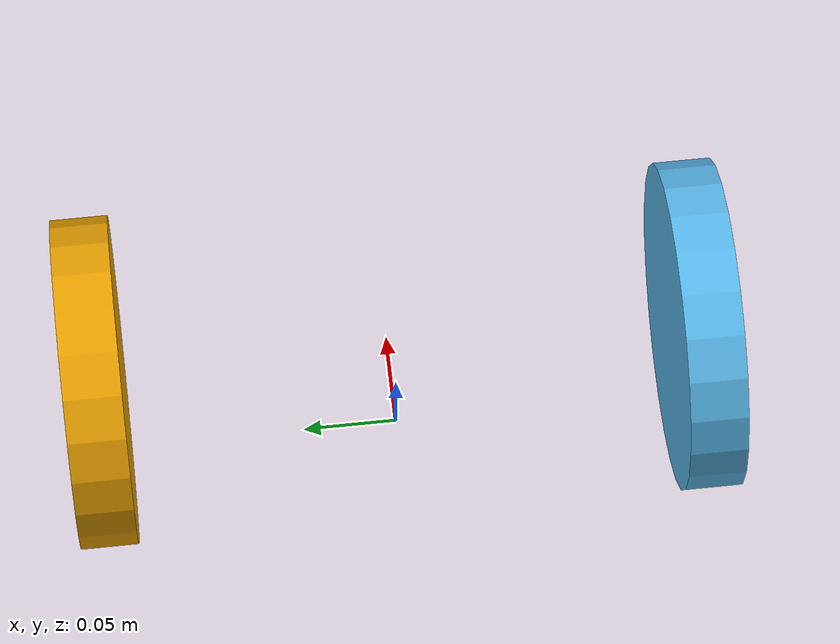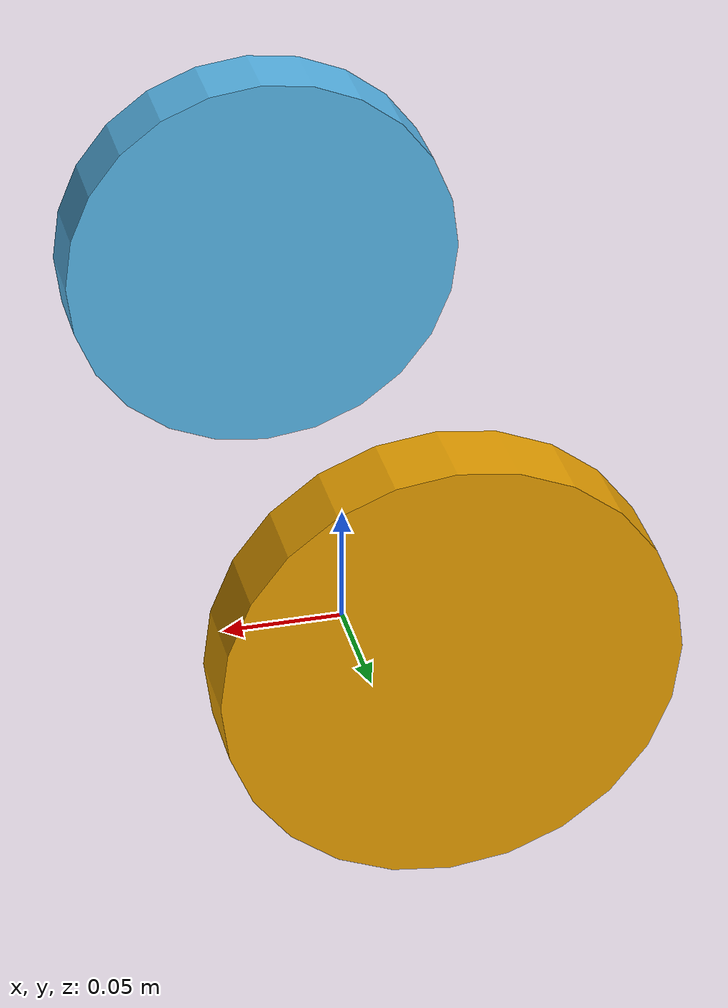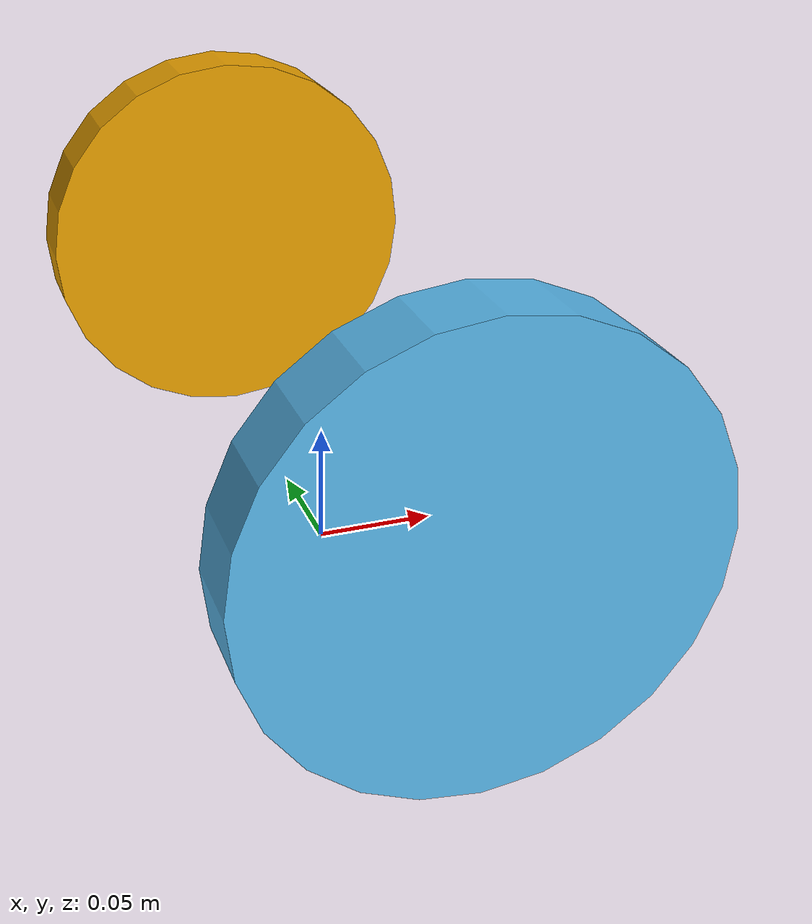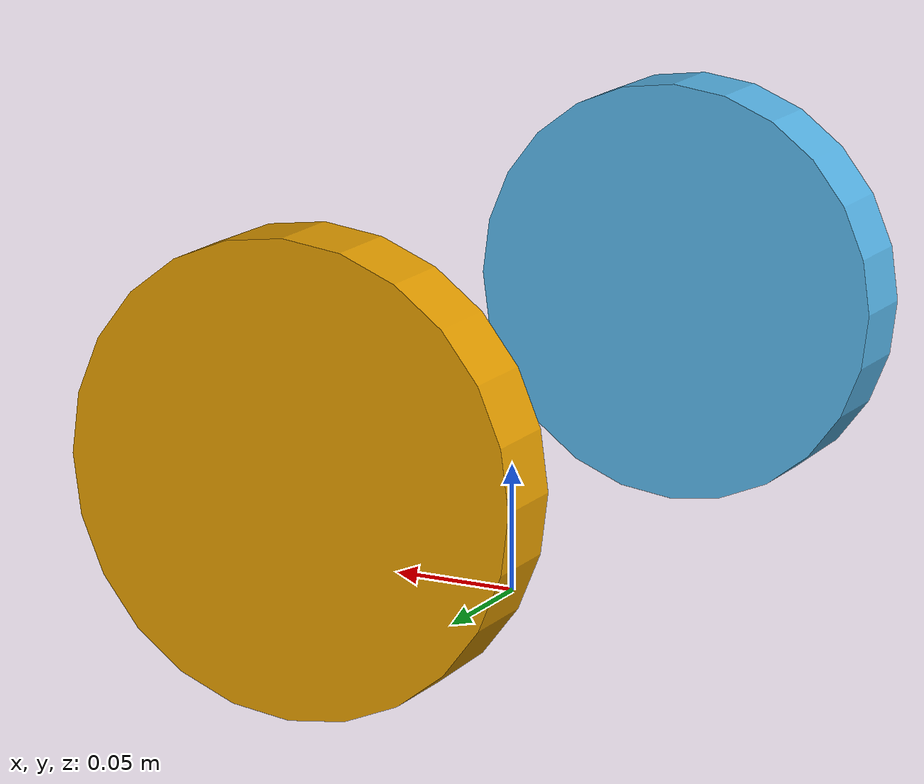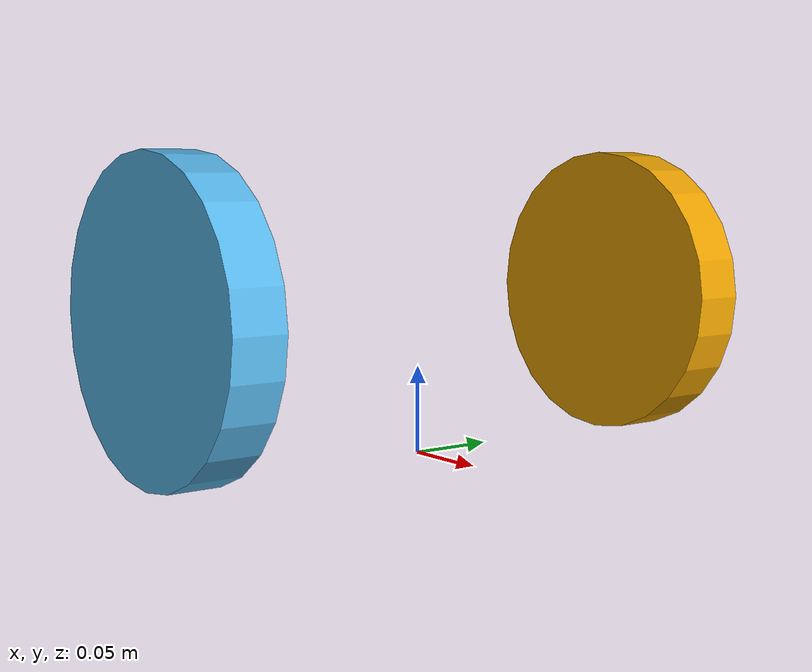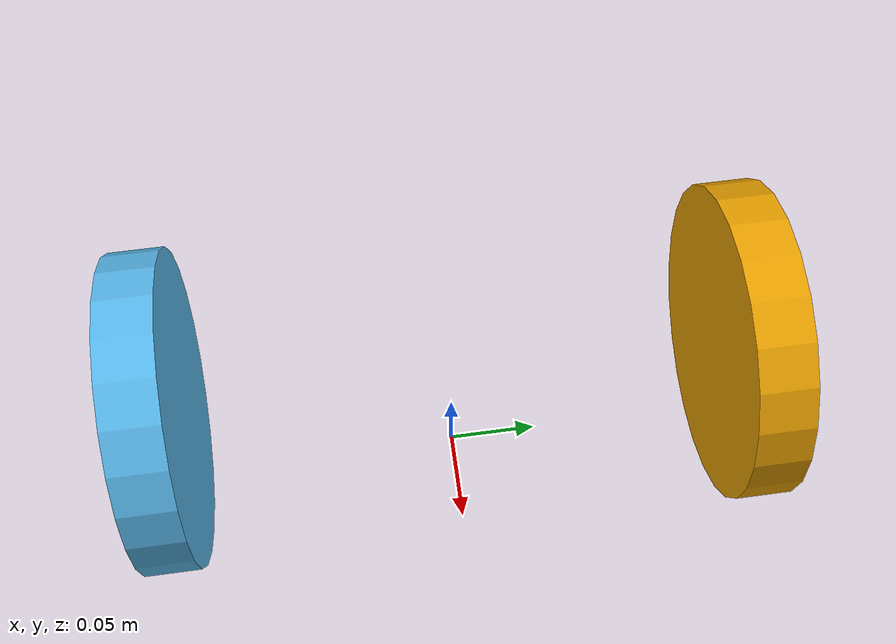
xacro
<?xml version="1.0" ?>
<robot name="SQUARE_SIRBOT"
       xmlns:xacro="http://ros.org/wiki/xacro"
       hw_version="v.1.3"
       motor_ch="2ch"
       camera1="d435"
       camera2="d435"
       lidar1="s2"
       footprint="[[0.255, 0.1365], [0.241, 0.17806], [0.185, 0.2065], [-0.185, 0.2065], [-0.24133, 0.17806], [-0.255, 0.1365], [-0.255, -0.1365], [-0.24133, -0.17806], [-0.185, -0.2065], [0.185, -0.2065], [0.24133, -0.17806], [0.255, -0.1365]]"
       robot_radius="0.32">

  <link name="robot_namespace/base_footprint">
    <origin xyz="0 0 0" rpy="0 0 0 " />
  </link>
  <joint name="robot_namespace/base_joint" type="fixed">
      <origin xyz="0 0 0.086500" rpy="0 0 0" />
    <parent link="robot_namespace/base_footprint"/>
    <child link="robot_namespace/base_link" />
  </joint>
  <link name="robot_namespace/base_link"/>
  <joint name="robot_namespace/imu_joint" type="fixed">
    <origin xyz=" 0.000000 0.000000 0.171100" rpy=" 0.000000 0.000000 0.000000"/>
    <parent link="robot_namespace/base_link"/>
    <child link="robot_namespace/imu_link" />
  </joint>
  <link name="robot_namespace/imu_link"/>
  <joint name="robot_namespace/scan_joint" type="fixed">
    <origin xyz=" 0.144900 0.000000 0.131600" rpy=" 0.000000 0.000000 0.000"/>
    <parent link="robot_namespace/base_link"/>
    <child link="robot_namespace/scan_link" />
  </joint>
  <link name="robot_namespace/scan_link"/>
  <joint name="robot_namespace/camera1_bottom_screw_joint" type="fixed">
    <origin xyz=" 0.179500 0.000000 0.54800" rpy=" 0.000000 0.0000 0.000000"/>
    <parent link="robot_namespace/base_link"/>
    <child link="robot_namespace/camera1_bottom_screw_link" />
  </joint>
  <link name="robot_namespace/camera1_bottom_screw_link"/>
  <joint name="robot_namespace/camera1_link_joint" type="fixed">
    <origin xyz=" 0.010600 0.017500 0.012500" rpy=" 0.000000 0.000000 0.000000"/>
    <parent link="robot_namespace/camera1_bottom_screw_link"/>
    <child link="robot_namespace/camera1_link" />
  </joint>
  <link name="robot_namespace/camera1_link"/>
  <joint name="robot_namespace/camera1_color_joint" type="fixed">
    <origin xyz=" 0.000000 0.015000 0.000000" rpy=" 0.000000 0.000000 0.000000"/>
    <parent link="robot_namespace/camera1_link"/>
    <child link="robot_namespace/camera1_color_frame" />
  </joint>
  <link name="robot_namespace/camera1_color_frame"/>
  <joint name="robot_namespace/camera1_color_optical_joint" type="fixed">
    <origin xyz=" 0.000000 0.000000 0.000000" rpy=" -1.570796 0.000000 -1.570796"/>
    <parent link="robot_namespace/camera1_color_frame"/>
    <child link="robot_namespace/camera1_color_optical_frame" />
  </joint>
  <link name="robot_namespace/camera1_color_optical_frame"/>
  <joint name="robot_namespace/camera1_depth_joint" type="fixed">
    <origin xyz=" 0.000000 0.000000 0.000000" rpy=" 0.000000 0.000000 0.000000"/>
    <parent link="robot_namespace/camera1_link"/>
    <child link="robot_namespace/camera1_depth_frame" />
  </joint>
  <link name="robot_namespace/camera1_depth_frame"/>
  <joint name="robot_namespace/camera1_depth_optical_joint" type="fixed">
    <origin xyz=" 0.000000 0.000000 0.000000" rpy=" 0.0 0.000000 0.0"/>
    <parent link="robot_namespace/camera1_depth_frame"/>
    <child link="robot_namespace/camera1_depth_optical_frame" />
  </joint>
  <link name="robot_namespace/camera1_depth_optical_frame"/>
  <joint name="robot_namespace/camera1_infra1_joint" type="fixed">
    <origin xyz=" 0.000000 0.000000 0.000000" rpy=" 0.000000 0.000000 0.000000"/>
    <parent link="robot_namespace/camera1_link"/>
    <child link="robot_namespace/camera1_infra1_frame" />
  </joint>
  <link name="robot_namespace/camera1_infra1_frame"/>
  <joint name="robot_namespace/camera1_infra1_optical_joint" type="fixed">
    <origin xyz=" 0.000000 0.000000 0.000000" rpy=" -1.570796 0.000000 -1.570796"/>
    <parent link="robot_namespace/camera1_infra1_frame"/>
    <child link="robot_namespace/camera1_infra1_optical_frame" />
  </joint>
  <link name="robot_namespace/camera1_infra1_optical_frame"/>
  <joint name="robot_namespace/camera1_infra2_joint" type="fixed">
    <origin xyz=" 0.000000 -0.050000 0.000000" rpy=" 0.000000 0.000000 0.000000"/>
    <parent link="robot_namespace/camera1_link"/>
    <child link="robot_namespace/camera1_infra2_frame" />
  </joint>
  <link name="robot_namespace/camera1_infra2_frame"/>
  <joint name="robot_namespace/camera1_infra2_optical_joint" type="fixed">
    <origin xyz=" 0.000000 0.000000 0.000000" rpy=" -1.570796 0.000000 -1.570796"/>
    <parent link="robot_namespace/camera1_infra2_frame"/>
    <child link="robot_namespace/camera1_infra2_optical_frame" />
  </joint>
  <link name="robot_namespace/camera1_infra2_optical_frame"/>
  <joint name="robot_namespace/camera2_bottom_screw_joint" type="fixed">
    <origin xyz=" 0.246800 0.000000 -0.014600" rpy=" 0.000000 -1.064651 0.000000"/>
    <parent link="robot_namespace/base_link"/>
    <child link="robot_namespace/camera2_bottom_screw_link" />
  </joint>
  <link name="robot_namespace/camera2_bottom_screw_link"/>
  <joint name="robot_namespace/camera2_link_joint" type="fixed">
    <origin xyz=" 0.010600 0.017500 0.012500" rpy=" 0.000000 0.000000 0.000000"/>
    <parent link="robot_namespace/camera2_bottom_screw_link"/>
    <child link="robot_namespace/camera2_link" />
  </joint>
  <link name="robot_namespace/camera2_link"/>
  <joint name="robot_namespace/camera2_color_joint" type="fixed">
    <origin xyz=" 0.000000 0.015000 0.000000" rpy=" 0.000000 0.000000 0.000000"/>
    <parent link="robot_namespace/camera2_link"/>
    <child link="robot_namespace/camera2_color_frame" />
  </joint>
  <link name="robot_namespace/camera2_color_frame"/>
  <joint name="robot_namespace/camera2_color_optical_joint" type="fixed">
    <origin xyz=" 0.000000 0.000000 0.000000" rpy=" -1.570796 0.000000 -1.570796"/>
    <parent link="robot_namespace/camera2_color_frame"/>
    <child link="robot_namespace/camera2_color_optical_frame" />
  </joint>
  <link name="robot_namespace/camera2_color_optical_frame"/>
  <joint name="robot_namespace/camera2_depth_joint" type="fixed">
    <origin xyz=" 0.000000 0.000000 0.000000" rpy=" 0.000000 0.000000 0.000000"/>
    <parent link="robot_namespace/camera2_link"/>
    <child link="robot_namespace/camera2_depth_frame" />
  </joint>
  <link name="robot_namespace/camera2_depth_frame"/>
  <joint name="robot_namespace/camera2_depth_optical_joint" type="fixed">
    <origin xyz=" 0.000000 0.000000 0.000000" rpy=" -1.570796 0.000000 -1.570796"/>
    <parent link="robot_namespace/camera2_depth_frame"/>
    <child link="robot_namespace/camera2_depth_optical_frame" />
  </joint>
  <link name="robot_namespace/camera2_depth_optical_frame"/>
  <joint name="robot_namespace/camera2_infra1_joint" type="fixed">
    <origin xyz=" 0.000000 0.000000 0.000000" rpy=" 0.000000 0.000000 0.000000"/>
    <parent link="robot_namespace/camera2_link"/>
    <child link="robot_namespace/camera2_infra1_frame" />
  </joint>
  <link name="robot_namespace/camera2_infra1_frame"/>
  <joint name="robot_namespace/camera2_infra1_optical_joint" type="fixed">
    <origin xyz=" 0.000000 0.000000 0.000000" rpy=" -1.570796 0.000000 -1.570796"/>
    <parent link="robot_namespace/camera2_infra1_frame"/>
    <child link="robot_namespace/camera2_infra1_optical_frame" />
  </joint>
  <link name="robot_namespace/camera2_infra1_optical_frame"/>
  <joint name="robot_namespace/camera2_infra2_joint" type="fixed">
    <origin xyz=" 0.000000 -0.050000 0.000000" rpy=" 0.000000 0.000000 0.000000"/>
    <parent link="robot_namespace/camera2_link"/>
    <child link="robot_namespace/camera2_infra2_frame" />
  </joint>
  <link name="robot_namespace/camera2_infra2_frame"/>
  <joint name="robot_namespace/camera2_infra2_optical_joint" type="fixed">
    <origin xyz=" 0.000000 0.000000 0.000000" rpy=" -1.570796 0.000000 -1.570796"/>
    <parent link="robot_namespace/camera2_infra2_frame"/>
    <child link="robot_namespace/camera2_infra2_optical_frame" />
  </joint>
  <link name="robot_namespace/camera2_infra2_optical_frame"/>

<!-- This is a comment block -->
  <!-- Left Wheel -->
  <joint name="robot_namespace/left_wheel_joint" type="continuous">
    <origin xyz="0.000000 0.158100 0.000000" rpy="-1.570796 0.000000 0.000000"/>
    <parent link="robot_namespace/base_link"/>
    <child link="robot_namespace/left_wheel_link"/>
    <axis xyz="0 0 1"/>
  </joint>
  <link name="robot_namespace/left_wheel_link">
    <visual>
      <origin xyz="0 0 0" rpy="0 0 0"/>
      <geometry>
        <cylinder length="0.030" radius="0.086500"/>
      </geometry>
    </visual>
    <collision>
      <origin xyz="0 0 0" rpy="0 0 0"/>
      <geometry>
        <cylinder length="0.030" radius="0.086500"/>
      </geometry>
    </collision>
    <inertial>
      <origin xyz="0 0 0" rpy="0 0 0"/>
      <mass value="0.5"/>
      <inertia ixx="0.001" ixy="0.0" ixz="0.0" iyy="0.001" iyz="0.0" izz="0.001"/>
    </inertial>
  </link>

  <joint name="robot_namespace/right_wheel_joint" type="continuous">
    <origin xyz="0.000000 -0.158100 0.000000" rpy="-1.570796 0.000000 0.000000"/>
    <parent link="robot_namespace/base_link"/>
    <child link="robot_namespace/right_wheel_link"/>
    <axis xyz="0 0 1"/>
  </joint>
  <link name="robot_namespace/right_wheel_link">
    <visual>
      <origin xyz="0 0 0" rpy="0 0 0"/>
      <geometry>
        <cylinder length="0.030" radius="0.086500"/>
      </geometry>
    </visual>
    <collision>
      <origin xyz="0 0 0" rpy="0 0 0"/>
      <geometry>
        <cylinder length="0.030" radius="0.086500"/>
      </geometry>
    </collision>
    <inertial>
      <origin xyz="0 0 0" rpy="0 0 0"/>
      <mass value="0.5"/>
      <inertia ixx="0.001" ixy="0.0" ixz="0.0" iyy="0.001" iyz="0.0" izz="0.001"/>
    </inertial>
  </link>
<!-- This is a comment block -->

</robot>
